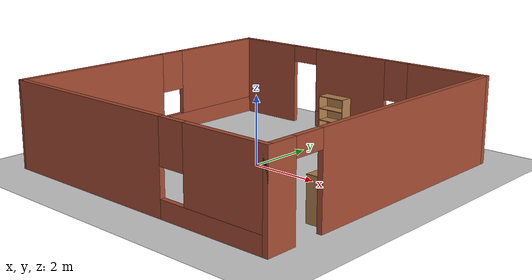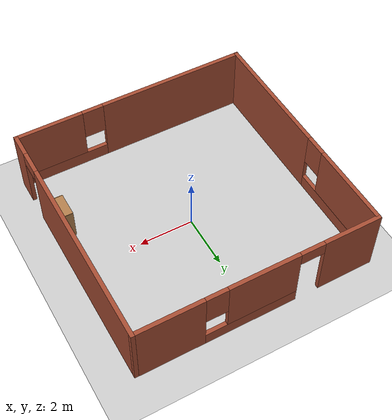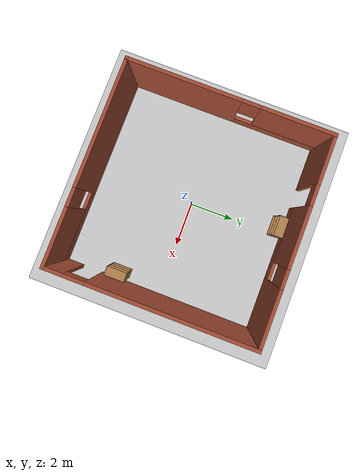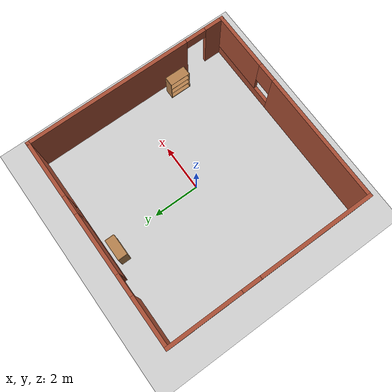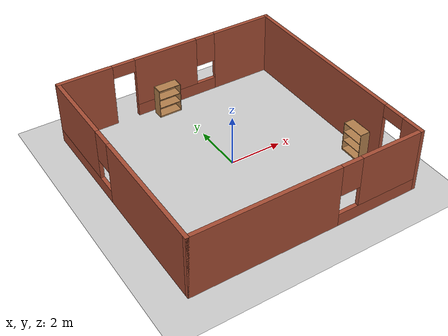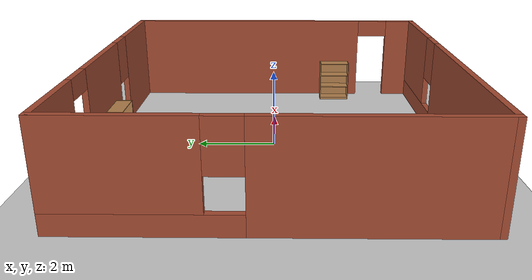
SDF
<sdf version="1.7">
 <world name="default">
  <light name="sun" type="directional">
   <pose>0 0 10 0 -0 0</pose>
   <diffuse>0.8 0.8 0.8 1</diffuse>
   <specular>0.2 0.2 0.2 1</specular>
   <attenuation>
    <range>1000</range>
    <constant>0.9</constant>
    <linear>0.01</linear>
    <quadratic>0.001</quadratic>
   </attenuation>
   <direction>-0.5 0.1 -0.9</direction>
   <spot><inner_angle>0</inner_angle><outer_angle>0</outer_angle><falloff>0</falloff></spot>
  </light>
  <model name="ground_plane">
   <static>1</static>
   <link name="link">
    <collision name="collision">
     <geometry><plane><normal>0 0 1</normal><size>100 100</size></plane></geometry>
     <surface><friction><ode><mu>100</mu><mu2>50</mu2></ode></friction></surface>
    </collision>
    <visual name="visual">
     <cast_shadows>0</cast_shadows>
     <geometry><plane><normal>0 0 1</normal><size>100 100</size></plane></geometry>
     <material>
      <script><uri>file://media/materials/scripts/gazebo.material</uri><name>Gazebo/Grey</name></script>
     </material>
    </visual>
   </link>
  </model>
  <gravity>0 0 -9.8</gravity>
  <magnetic_field>6e-06 2.3e-05 -4.2e-05</magnetic_field>
  <atmosphere type="adiabatic"/>
  <physics type="ode">
   <max_step_size>0.001</max_step_size>
   <real_time_factor>1</real_time_factor>
   <real_time_update_rate>1000</real_time_update_rate>
  </physics>
  <scene><ambient>0.4 0.4 0.4 1</ambient><background>0.7 0.7 0.7 1</background><shadows>1</shadows></scene>
  <audio><device>default</device></audio>
  <spherical_coordinates>
   <surface_model>EARTH_WGS84</surface_model>
   <latitude_deg>0</latitude_deg>
   <longitude_deg>0</longitude_deg>
   <elevation>0</elevation>
   <heading_deg>0</heading_deg>
  </spherical_coordinates>
  <model name="Simple_Wall">
   <pose>0.00397 -0.022218 0 0 -0 0</pose>
   <link name="Wall_17">
    <pose>-4.425 -0 0 0 -0 1.5708</pose>
    <visual name="Wall_17_Visual_0">
     <pose>-2.00452 0 1.25 0 -0 0</pose>
     <geometry><box><size>4.99096 0.15 2.5</size></box></geometry>
     <material>
      <script><uri>file://media/materials/scripts/gazebo.material</uri><name>Gazebo/Bricks</name></script>
      <ambient>1 1 1 1</ambient>
     </material>
     <meta><layer>0</layer></meta>
    </visual>
    <collision name="Wall_17_Collision_0">
     <geometry><box><size>4.99096 0.15 2.5</size></box></geometry>
     <pose>-2.00452 0 1.25 0 -0 0</pose>
    </collision>
    <visual name="Wall_17_Visual_1">
     <pose>2.49548 0 0.25 0 -0 0</pose>
     <geometry><box><size>4.00904 0.15 0.5</size></box></geometry>
     <material>
      <script><uri>file://media/materials/scripts/gazebo.material</uri><name>Gazebo/Bricks</name></script>
      <ambient>1 1 1 1</ambient>
     </material>
     <meta><layer>0</layer></meta>
    </visual>
    <collision name="Wall_17_Collision_1">
     <geometry><box><size>4.00904 0.15 0.5</size></box></geometry>
     <pose>2.49548 0 0.25 0 -0 0</pose>
    </collision>
    <visual name="Wall_17_Visual_2">
     <pose>2.89548 0 1.5 0 -0 0</pose>
     <geometry><box><size>3.20904 0.15 2</size></box></geometry>
     <material>
      <script><uri>file://media/materials/scripts/gazebo.material</uri><name>Gazebo/Bricks</name></script>
      <ambient>1 1 1 1</ambient>
     </material>
     <meta><layer>0</layer></meta>
    </visual>
    <collision name="Wall_17_Collision_2">
     <geometry><box><size>3.20904 0.15 2</size></box></geometry>
     <pose>2.89548 0 1.5 0 -0 0</pose>
    </collision>
    <visual name="Wall_17_Visual_3">
     <pose>0.890961 0 1.9 0 -0 0</pose>
     <geometry><box><size>0.8 0.15 1.2</size></box></geometry>
     <material>
      <script><uri>file://media/materials/scripts/gazebo.material</uri><name>Gazebo/Bricks</name></script>
      <ambient>1 1 1 1</ambient>
     </material>
     <meta><layer>0</layer></meta>
    </visual>
    <collision name="Wall_17_Collision_3">
     <geometry><box><size>0.8 0.15 1.2</size></box></geometry>
     <pose>0.890961 0 1.9 0 -0 0</pose>
    </collision>
   </link>
   <link name="Wall_23">
    <pose>0 -4.425 0 0 -0 0</pose>
    <visual name="Wall_23_Visual_0">
     <pose>-1.68075 0 1.25 0 -0 0</pose>
     <geometry><box><size>5.6385 0.15 2.5</size></box></geometry>
     <material>
      <script><uri>file://media/materials/scripts/gazebo.material</uri><name>Gazebo/Bricks</name></script>
      <ambient>1 1 1 1</ambient>
     </material>
     <meta><layer>0</layer></meta>
    </visual>
    <collision name="Wall_23_Collision_0">
     <geometry><box><size>5.6385 0.15 2.5</size></box></geometry>
     <pose>-1.68075 0 1.25 0 -0 0</pose>
    </collision>
    <visual name="Wall_23_Visual_1">
     <pose>2.81925 0 0.25 0 -0 0</pose>
     <geometry><box><size>3.3615 0.15 0.5</size></box></geometry>
     <material>
      <script><uri>file://media/materials/scripts/gazebo.material</uri><name>Gazebo/Bricks</name></script>
      <ambient>1 1 1 1</ambient>
     </material>
     <meta><layer>0</layer></meta>
    </visual>
    <collision name="Wall_23_Collision_1">
     <geometry><box><size>3.3615 0.15 0.5</size></box></geometry>
     <pose>2.81925 0 0.25 0 -0 0</pose>
    </collision>
    <visual name="Wall_23_Visual_2">
     <pose>3.21925 0 1.5 0 -0 0</pose>
     <geometry><box><size>2.5615 0.15 2</size></box></geometry>
     <material>
      <script><uri>file://media/materials/scripts/gazebo.material</uri><name>Gazebo/Bricks</name></script>
      <ambient>1 1 1 1</ambient>
     </material>
     <meta><layer>0</layer></meta>
    </visual>
    <collision name="Wall_23_Collision_2">
     <geometry><box><size>2.5615 0.15 2</size></box></geometry>
     <pose>3.21925 0 1.5 0 -0 0</pose>
    </collision>
    <visual name="Wall_23_Visual_3">
     <pose>1.5385 0 1.9 0 -0 0</pose>
     <geometry><box><size>0.8 0.15 1.2</size></box></geometry>
     <material>
      <script><uri>file://media/materials/scripts/gazebo.material</uri><name>Gazebo/Bricks</name></script>
      <ambient>1 1 1 1</ambient>
     </material>
     <meta><layer>0</layer></meta>
    </visual>
    <collision name="Wall_23_Collision_3">
     <geometry><box><size>0.8 0.15 1.2</size></box></geometry>
     <pose>1.5385 0 1.9 0 -0 0</pose>
    </collision>
   </link>
   <link name="Wall_27">
    <pose>4.425 -0 0 0 -0 1.5708</pose>
    <visual name="Wall_27_Visual_0">
     <pose>-4.0523 0 1.25 0 -0 0</pose>
     <geometry><box><size>0.895403 0.15 2.5</size></box></geometry>
     <material>
      <script><uri>file://media/materials/scripts/gazebo.material</uri><name>Gazebo/Bricks</name></script>
      <ambient>1 1 1 1</ambient>
     </material>
     <meta><layer>0</layer></meta>
    </visual>
    <collision name="Wall_27_Collision_0">
     <geometry><box><size>0.895403 0.15 2.5</size></box></geometry>
     <pose>-4.0523 0 1.25 0 -0 0</pose>
    </collision>
    <visual name="Wall_27_Visual_1">
     <pose>0.897702 0 1.25 0 -0 0</pose>
     <geometry><box><size>7.2046 0.15 2.5</size></box></geometry>
     <material>
      <script><uri>file://media/materials/scripts/gazebo.material</uri><name>Gazebo/Bricks</name></script>
      <ambient>1 1 1 1</ambient>
     </material>
     <meta><layer>0</layer></meta>
    </visual>
    <collision name="Wall_27_Collision_1">
     <geometry><box><size>7.2046 0.15 2.5</size></box></geometry>
     <pose>0.897702 0 1.25 0 -0 0</pose>
    </collision>
    <visual name="Wall_27_Visual_2">
     <pose>-3.1546 0 2.25 0 -0 0</pose>
     <geometry><box><size>0.9 0.15 0.5</size></box></geometry>
     <material>
      <script><uri>file://media/materials/scripts/gazebo.material</uri><name>Gazebo/Bricks</name></script>
      <ambient>1 1 1 1</ambient>
     </material>
     <meta><layer>0</layer></meta>
    </visual>
    <collision name="Wall_27_Collision_2">
     <geometry><box><size>0.9 0.15 0.5</size></box></geometry>
     <pose>-3.1546 0 2.25 0 -0 0</pose>
    </collision>
   </link>
   <link name="Wall_28">
    <pose>0 4.425 0 0 -0 3.14159</pose>
    <visual name="Wall_28_Visual_0">
     <pose>-3.2332 0 1.25 0 -0 0</pose>
     <geometry><box><size>2.53361 0.15 2.5</size></box></geometry>
     <material>
      <script><uri>file://media/materials/scripts/gazebo.material</uri><name>Gazebo/Bricks</name></script>
      <ambient>1 1 1 1</ambient>
     </material>
     <meta><layer>0</layer></meta>
    </visual>
    <collision name="Wall_28_Collision_0">
     <geometry><box><size>2.53361 0.15 2.5</size></box></geometry>
     <pose>-3.2332 0 1.25 0 -0 0</pose>
    </collision>
    <visual name="Wall_28_Visual_1">
     <pose>3.42038 0 1.25 0 -0 0</pose>
     <geometry><box><size>2.15923 0.15 2.5</size></box></geometry>
     <material>
      <script><uri>file://media/materials/scripts/gazebo.material</uri><name>Gazebo/Bricks</name></script>
      <ambient>1 1 1 1</ambient>
     </material>
     <meta><layer>0</layer></meta>
    </visual>
    <collision name="Wall_28_Collision_1">
     <geometry><box><size>2.15923 0.15 2.5</size></box></geometry>
     <pose>3.42038 0 1.25 0 -0 0</pose>
    </collision>
    <visual name="Wall_28_Visual_2">
     <pose>-0.262814 0 0.25 0 -0 0</pose>
     <geometry><box><size>3.40716 0.15 0.5</size></box></geometry>
     <material>
      <script><uri>file://media/materials/scripts/gazebo.material</uri><name>Gazebo/Bricks</name></script>
      <ambient>1 1 1 1</ambient>
     </material>
     <meta><layer>0</layer></meta>
    </visual>
    <collision name="Wall_28_Collision_2">
     <geometry><box><size>3.40716 0.15 0.5</size></box></geometry>
     <pose>-0.262814 0 0.25 0 -0 0</pose>
    </collision>
    <visual name="Wall_28_Visual_3">
     <pose>0.137186 0 1.5 0 -0 0</pose>
     <geometry><box><size>2.60716 0.15 2</size></box></geometry>
     <material>
      <script><uri>file://media/materials/scripts/gazebo.material</uri><name>Gazebo/Bricks</name></script>
      <ambient>1 1 1 1</ambient>
     </material>
     <meta><layer>0</layer></meta>
    </visual>
    <collision name="Wall_28_Collision_3">
     <geometry><box><size>2.60716 0.15 2</size></box></geometry>
     <pose>0.137186 0 1.5 0 -0 0</pose>
    </collision>
    <visual name="Wall_28_Visual_4">
     <pose>-1.56639 0 1.9 0 -0 0</pose>
     <geometry><box><size>0.8 0.15 1.2</size></box></geometry>
     <material>
      <script><uri>file://media/materials/scripts/gazebo.material</uri><name>Gazebo/Bricks</name></script>
      <ambient>1 1 1 1</ambient>
     </material>
     <meta><layer>0</layer></meta>
    </visual>
    <collision name="Wall_28_Collision_4">
     <geometry><box><size>0.8 0.15 1.2</size></box></geometry>
     <pose>-1.56639 0 1.9 0 -0 0</pose>
    </collision>
    <visual name="Wall_28_Visual_5">
     <pose>1.89077 0 2.25 0 -0 0</pose>
     <geometry><box><size>0.9 0.15 0.5</size></box></geometry>
     <material>
      <script><uri>file://media/materials/scripts/gazebo.material</uri><name>Gazebo/Bricks</name></script>
      <ambient>1 1 1 1</ambient>
     </material>
     <meta><layer>0</layer></meta>
    </visual>
    <collision name="Wall_28_Collision_5">
     <geometry><box><size>0.9 0.15 0.5</size></box></geometry>
     <pose>1.89077 0 2.25 0 -0 0</pose>
    </collision>
   </link>
   <static>1</static>
  </model>
  <model name="bookshelf">
   <static>1</static>
   <link name="link">
    <inertial><mass>1</mass></inertial>
    <collision name="back">
     <pose>0 0.005 0.6 0 -0 0</pose>
     <geometry><box><size>0.9 0.01 1.2</size></box></geometry>
    </collision>
    <visual name="visual1">
     <pose>0 0.005 0.6 0 -0 0</pose>
     <geometry><box><size>0.9 0.01 1.2</size></box></geometry>
     <material>
      <script><uri>file://media/materials/scripts/gazebo.material</uri><name>Gazebo/Wood</name></script>
     </material>
    </visual>
    <collision name="left_side">
     <pose>0.45 -0.195 0.6 0 -0 0</pose>
     <geometry><box><size>0.02 0.4 1.2</size></box></geometry>
    </collision>
    <visual name="visual2">
     <pose>0.45 -0.195 0.6 0 -0 0</pose>
     <geometry><box><size>0.02 0.4 1.2</size></box></geometry>
     <material>
      <script><uri>file://media/materials/scripts/gazebo.material</uri><name>Gazebo/Wood</name></script>
     </material>
    </visual>
    <collision name="right_side">
     <pose>-0.45 -0.195 0.6 0 -0 0</pose>
     <geometry><box><size>0.02 0.4 1.2</size></box></geometry>
    </collision>
    <visual name="visual3">
     <pose>-0.45 -0.195 0.6 0 -0 0</pose>
     <geometry><box><size>0.02 0.4 1.2</size></box></geometry>
     <material>
      <script><uri>file://media/materials/scripts/gazebo.material</uri><name>Gazebo/Wood</name></script>
     </material>
    </visual>
    <collision name="bottom">
     <pose>0 -0.195 0.03 0 -0 0</pose>
     <geometry><box><size>0.88 0.4 0.06</size></box></geometry>
    </collision>
    <visual name="visual4">
     <pose>0 -0.195 0.03 0 -0 0</pose>
     <geometry><box><size>0.88 0.4 0.06</size></box></geometry>
     <material>
      <script><uri>file://media/materials/scripts/gazebo.material</uri><name>Gazebo/Wood</name></script>
     </material>
    </visual>
    <collision name="top">
     <pose>0 -0.195 1.19 0 -0 0</pose>
     <geometry><box><size>0.88 0.4 0.02</size></box></geometry>
    </collision>
    <visual name="visual5">
     <pose>0 -0.195 1.19 0 -0 0</pose>
     <geometry><box><size>0.88 0.4 0.02</size></box></geometry>
     <material>
      <script><uri>file://media/materials/scripts/gazebo.material</uri><name>Gazebo/Wood</name></script>
     </material>
    </visual>
    <collision name="low_shelf">
     <pose>0 -0.195 0.43 0 -0 0</pose>
     <geometry><box><size>0.88 0.4 0.02</size></box></geometry>
    </collision>
    <visual name="visual6">
     <pose>0 -0.195 0.43 0 -0 0</pose>
     <geometry><box><size>0.88 0.4 0.02</size></box></geometry>
     <material>
      <script><uri>file://media/materials/scripts/gazebo.material</uri><name>Gazebo/Wood</name></script>
     </material>
    </visual>
    <collision name="high_shelf">
     <pose>0 -0.195 0.8 0 -0 0</pose>
     <geometry><box><size>0.88 0.4 0.02</size></box></geometry>
    </collision>
    <visual name="visual7">
     <pose>0 -0.195 0.8 0 -0 0</pose>
     <geometry><box><size>0.88 0.4 0.02</size></box></geometry>
     <material>
      <script><uri>file://media/materials/scripts/gazebo.material</uri><name>Gazebo/Wood</name></script>
     </material>
    </visual>
   </link>
   <pose>-0.377747 4.14346 0 0 -0 0</pose>
  </model>
  <model name="bookshelf_clone">
   <static>1</static>
   <link name="link">
    <inertial><mass>1</mass></inertial>
    <collision name="back">
     <pose>0 0.005 0.6 0 -0 0</pose>
     <geometry><box><size>0.9 0.01 1.2</size></box></geometry>
    </collision>
    <visual name="visual1">
     <pose>0 0.005 0.6 0 -0 0</pose>
     <geometry><box><size>0.9 0.01 1.2</size></box></geometry>
     <material>
      <script><uri>file://media/materials/scripts/gazebo.material</uri><name>Gazebo/Wood</name></script>
     </material>
    </visual>
    <collision name="left_side">
     <pose>0.45 -0.195 0.6 0 -0 0</pose>
     <geometry><box><size>0.02 0.4 1.2</size></box></geometry>
    </collision>
    <visual name="visual2">
     <pose>0.45 -0.195 0.6 0 -0 0</pose>
     <geometry><box><size>0.02 0.4 1.2</size></box></geometry>
     <material>
      <script><uri>file://media/materials/scripts/gazebo.material</uri><name>Gazebo/Wood</name></script>
     </material>
    </visual>
    <collision name="right_side">
     <pose>-0.45 -0.195 0.6 0 -0 0</pose>
     <geometry><box><size>0.02 0.4 1.2</size></box></geometry>
    </collision>
    <visual name="visual3">
     <pose>-0.45 -0.195 0.6 0 -0 0</pose>
     <geometry><box><size>0.02 0.4 1.2</size></box></geometry>
     <material>
      <script><uri>file://media/materials/scripts/gazebo.material</uri><name>Gazebo/Wood</name></script>
     </material>
    </visual>
    <collision name="bottom">
     <pose>0 -0.195 0.03 0 -0 0</pose>
     <geometry><box><size>0.88 0.4 0.06</size></box></geometry>
    </collision>
    <visual name="visual4">
     <pose>0 -0.195 0.03 0 -0 0</pose>
     <geometry><box><size>0.88 0.4 0.06</size></box></geometry>
     <material>
      <script><uri>file://media/materials/scripts/gazebo.material</uri><name>Gazebo/Wood</name></script>
     </material>
    </visual>
    <collision name="top">
     <pose>0 -0.195 1.19 0 -0 0</pose>
     <geometry><box><size>0.88 0.4 0.02</size></box></geometry>
    </collision>
    <visual name="visual5">
     <pose>0 -0.195 1.19 0 -0 0</pose>
     <geometry><box><size>0.88 0.4 0.02</size></box></geometry>
     <material>
      <script><uri>file://media/materials/scripts/gazebo.material</uri><name>Gazebo/Wood</name></script>
     </material>
    </visual>
    <collision name="low_shelf">
     <pose>0 -0.195 0.43 0 -0 0</pose>
     <geometry><box><size>0.88 0.4 0.02</size></box></geometry>
    </collision>
    <visual name="visual6">
     <pose>0 -0.195 0.43 0 -0 0</pose>
     <geometry><box><size>0.88 0.4 0.02</size></box></geometry>
     <material>
      <script><uri>file://media/materials/scripts/gazebo.material</uri><name>Gazebo/Wood</name></script>
     </material>
    </visual>
    <collision name="high_shelf">
     <pose>0 -0.195 0.8 0 -0 0</pose>
     <geometry><box><size>0.88 0.4 0.02</size></box></geometry>
    </collision>
    <visual name="visual7">
     <pose>0 -0.195 0.8 0 -0 0</pose>
     <geometry><box><size>0.88 0.4 0.02</size></box></geometry>
     <material>
      <script><uri>file://media/materials/scripts/gazebo.material</uri><name>Gazebo/Wood</name></script>
     </material>
    </visual>
   </link>
   <pose>4.16152 -1.94039 0 0 0 -1.57346</pose>
  </model>
 </world>
</sdf>
